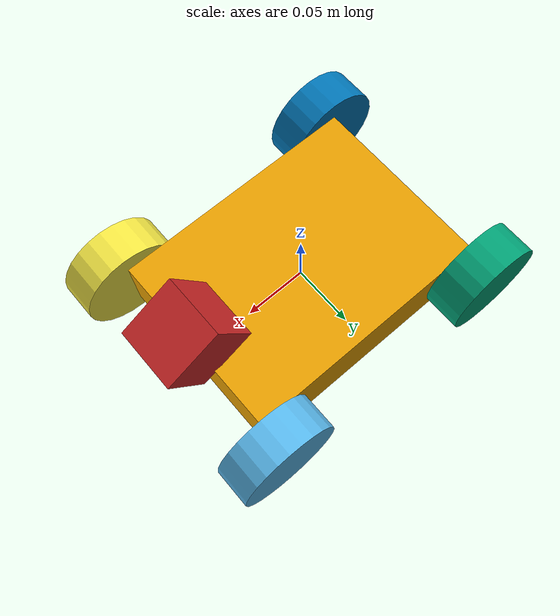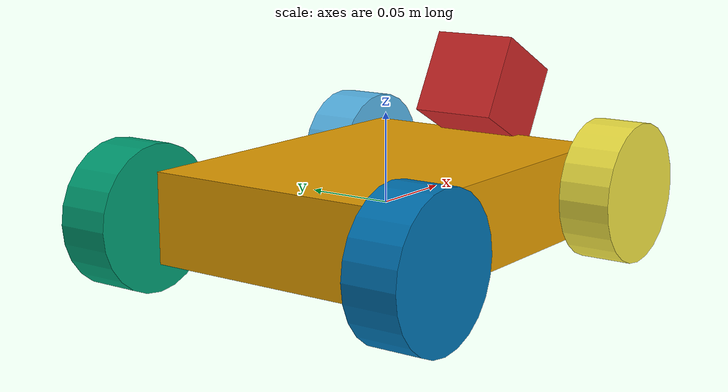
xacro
<?xml version='1.0'?>

<robot name="robot" xmlns:xacro="http://www.ros.org/wiki/xacro">

  <xacro:property name="chassis_width" value="0.15"/>
  <xacro:property name="chassis_length" value="0.2"/>
  <xacro:property name="chassis_height" value="0.05"/>
  <xacro:property name="chassis_mass" value=".5"/>
  <xacro:property name="wheel_radius" value="0.04"/>
  <xacro:property name="wheel_width" value="0.03"/>
 <xacro:property name="camera_link" value="0.05" /> <!-- Size of square 'camera' box -->

  <xacro:include filename="$(find enph353_ros_lab)/urdf/macros.xacro" />

  <link name='chassis'>

    <xacro:box_inertial name="chassis" m="${chassis_mass}" x="${chassis_length}" y="${chassis_width}" z="${chassis_height}"/>

    <collision name='chassis_collision'>
      <geometry>
        <box size="${chassis_length} ${chassis_width} ${chassis_height}"/>
      </geometry>
    </collision>

    <visual name='chassis_visual'>
      <origin xyz="0 0 0" rpy=" 0 0 0"/>
      <geometry>
        <box size="${chassis_length} ${chassis_width} ${chassis_height}"/>
      </geometry>
      <surface>
        <friction>
          <ode>
            <mu>0.1</mu>
            <mu2>0.1</mu2>
          </ode>
        </friction>
      </surface>
    </visual>

  </link>

<link name='wheel1'>
	<xacro:cylinder_inertial name="wheel1" m=".01" r ="${wheel_radius}" h="${wheel_width}" />

   <collision name='wheel1'>
      <geometry>
        <cylinder length="${wheel_width}" radius="${wheel_radius}"/>
      </geometry>
      <surface>
        <friction>
          <ode>
            <mu>.1</mu>
            <mu2>.1</mu2>
          </ode>
        </friction>
      </surface>
<origin rpy="1.57075 0 0" xyz="0 0 0"/>
    </collision>

   <visual>
      <origin rpy="1.57075 0 0" xyz="0 0 0"/>
      <geometry>
        <cylinder length="${wheel_width}" radius="${wheel_radius}"/>
      </geometry>
    </visual>
</link>

<link name='wheel2'>
	<xacro:cylinder_inertial name="wheel2" m=".01" r ="${wheel_radius}" h="${wheel_width}" />

   <collision name='wheel1'>
      <geometry>
        <cylinder length="${wheel_width}" radius="${wheel_radius}"/>
      </geometry>
      <surface>
        <friction>
          <ode>
            <mu>.1</mu>
            <mu2>.1</mu2>
          </ode>
        </friction>
      </surface>
    </collision>

   <visual>
      <origin rpy="1.57075 0 0" xyz="0 0 0"/>
      <geometry>
        <cylinder length="${wheel_width}" radius="${wheel_radius}"/>
      </geometry>
<origin rpy="1.57075 0 0" xyz="0 0 0"/>
    </visual>
</link>

<link name='wheel3'>
	<xacro:cylinder_inertial name="wheel3" m=".01" r ="${wheel_radius}" h="${wheel_width}" />

   <collision name='wheel1'>
      <geometry>
        <cylinder length="${wheel_width}" radius="${wheel_radius}"/>
      </geometry>
      <surface>
        <friction>
          <ode>
            <mu>.1</mu>
            <mu2>.1</mu2>
          </ode>
        </friction>
      </surface>
<origin rpy="1.57075 0 0" xyz="0 0 0"/>
    </collision>

   <visual>
      <origin rpy="1.57075 0 0" xyz="0 0 0"/>
      <geometry>
        <cylinder length="${wheel_width}" radius="${wheel_radius}"/>
      </geometry>
<origin rpy="1.57075 0 0" xyz="0 0 0"/>
    </visual>
</link>

<link name='wheel4'>
	<xacro:cylinder_inertial name="wheel1" m=".01" r ="${wheel_radius}" h="${wheel_width}" />

   <collision name='wheel4'>
      <geometry>
        <cylinder length="${wheel_width}" radius="${wheel_radius}"/>
      </geometry>
      <surface>
        <friction>
          <ode>
            <mu>.1</mu>
            <mu2>.1</mu2>
          </ode>
        </friction>
      </surface>
<origin rpy="1.57075 0 0" xyz="0 0 0"/>
    </collision>

   <visual>
      <origin rpy="1.57075 0 0" xyz="0 0 0"/>
      <geometry>
        <cylinder length="${wheel_width}" radius="${wheel_radius}"/>
      </geometry>
    </visual>
</link>

  <joint name="joint1" type="continuous">
<axis xyz=" 0 1 0"/>
    <parent link="chassis"/>
    <child link="wheel1"/>
    <origin xyz=".1 .09 0" rpy="0 0 0" />
  </joint>

  <joint name="joint2" type="continuous">
<axis xyz=" 0 1 0"/>
    <parent link="chassis"/>
    <child link="wheel2"/>
    <origin xyz="-.1 .09 0" rpy="0 0 0" />
  </joint>

  <joint name="joint3" type="continuous">
<axis xyz=" 0 1 0"/>
    <parent link="chassis"/>
    <child link="wheel3"/>
    <origin xyz=".1 -.09 0" rpy="0 0 0" />
  </joint>

  <joint name="joint4" type="continuous">
    <axis xyz=" 0 1 0"/>
    <parent link="chassis"/>
    <child link="wheel4"/>
    <origin xyz="-.1 -.09 0" rpy="0 0 0" />
  </joint>

<gazebo>
  <plugin name="skid_steer_drive_controller" filename="libgazebo_ros_skid_steer_drive.so">
    <updateRate>100.0</updateRate>
    <robotNamespace>/</robotNamespace>
    <leftFrontJoint>joint1</leftFrontJoint>
    <rightFrontJoint>joint3</rightFrontJoint>
    <leftRearJoint>joint2</leftRearJoint>
    <rightRearJoint>joint4</rightRearJoint>
    <wheelSeparation>.18</wheelSeparation>
    <wheelDiameter>0.08</wheelDiameter>
    <robotBaseFrame>base_link</robotBaseFrame>
    <torque>20</torque>
    <topicName>cmd_vel</topicName>
    <broadcastTF>false</broadcastTF>
  </plugin>
</gazebo>

<joint name="camera_joint" type="fixed">
    <axis xyz="0 1 0" />
    <origin xyz=".1 0 .05" rpy="0 0.5 0"/>
    <parent link="chassis"/>
    <child link="camera_link"/>
  </joint>

  <!-- Camera -->
  <link name="camera_link">
    <collision>
      <origin xyz="0 0 0" rpy="0 0 0"/>
      <geometry>
    <box size="${camera_link} ${camera_link} ${camera_link}"/>
      </geometry>
    </collision>

    <visual>
      <origin xyz="0 0 0" rpy="0 0 0"/>
      <geometry>
    <box size="${camera_link} ${camera_link} ${camera_link}"/>
      </geometry>
      <material name="red"/>
    </visual>

    <inertial>
      <mass value="1e-5" />
      <origin xyz="0 0 0" rpy="0 0 0"/>
      <inertia ixx="1e-6" ixy="0" ixz="0" iyy="1e-6" iyz="0" izz="1e-6" />
    </inertial>
  </link>

 <!-- camera -->
  <gazebo reference="camera_link">
    <sensor type="camera" name="camera1">
      <update_rate>30.0</update_rate>
      <camera name="head">
        <horizontal_fov>1.3962634</horizontal_fov>
        <image>
          <width>800</width>
          <height>800</height>
          <format>R8G8B8</format>
        </image>
        <clip>
          <near>0.02</near>
          <far>300</far>
        </clip>
        <noise>
          <type>gaussian</type>
          <!-- Noise is sampled independently per pixel on each frame.
               That pixel's noise value is added to each of its color
               channels, which at that point lie in the range [0,1]. -->
          <mean>0.0</mean>
          <stddev>0.007</stddev>
        </noise>
      </camera>
      <plugin name="camera_controller" filename="libgazebo_ros_camera.so">
        <alwaysOn>true</alwaysOn>
        <updateRate>0.0</updateRate>
        <cameraName>rrbot/camera1</cameraName>
        <imageTopicName>image_raw</imageTopicName>
        <cameraInfoTopicName>camera_info</cameraInfoTopicName>
        <frameName>camera_link</frameName>
        <hackBaseline>0.07</hackBaseline>
        <distortionK1>0.0</distortionK1>
        <distortionK2>0.0</distortionK2>
        <distortionK3>0.0</distortionK3>
        <distortionT1>0.0</distortionT1>
        <distortionT2>0.0</distortionT2>
      </plugin>
    </sensor>
  </gazebo>

</robot>
